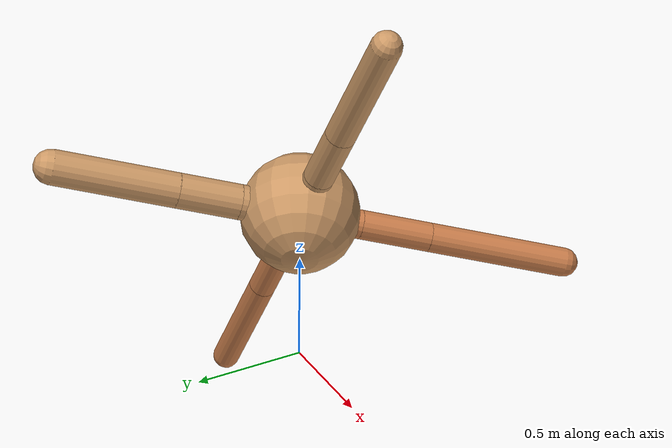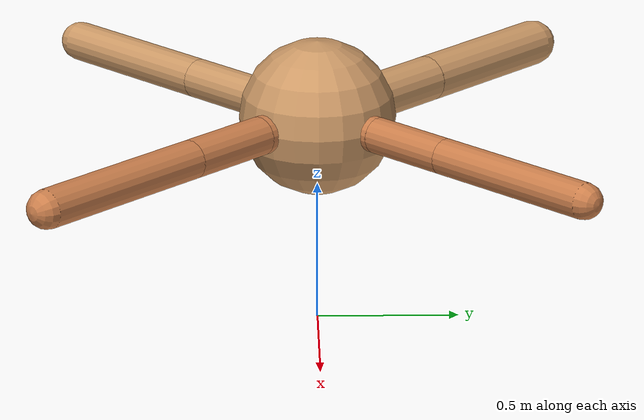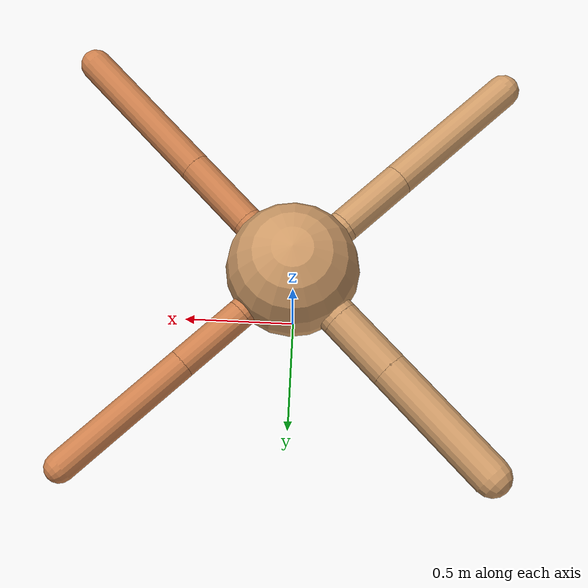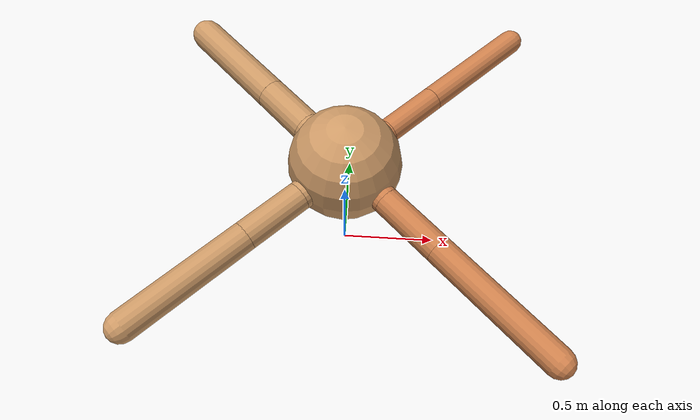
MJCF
<?xml version="1.0" ?>
<mujoco model="ant">

	<compiler angle="degree" coordinate="local" inertiafromgeom="true"/>

	<option integrator="RK4" timestep="0.01"/>

	<custom>

		<numeric data="0.0 0.0 0.55 1.0 0.0 0.0 0.0 0.0 1.0 0.0 -1.0 0.0 -1.0 0.0 1.0" name="init_qpos"/>

	</custom>

	<default>

		<joint armature="1" damping="1" limited="true"/>

		<geom conaffinity="0" condim="3" density="5.0" friction="1.5 0.1 0.1" margin="0.01" rgba="0.8 0.6 0.4 1"/>

	</default>

	<worldbody>

		<body name="torso" pos="0 0 0.75">

			<geom name="torso_geom" pos="0 0 0" size="0.2730849907276807" type="sphere"/>

			<!--joint armature="0" damping="0" limited="false" margin="0.01" name="root" pos="0 0 0" type="free"/-->

			<body name="front_left_leg" pos="0 0 0">

				<geom fromto="0 0 0 0.2 0.2 0" name="aux_1_geom" size="0.06217585319647485" type="capsule" rgba=".8 .5 .3 1"/>

				<body name="aux_1" pos="0.2 0.2 0">

					<joint axis="0 0 1" name="hip_1" pos="0.0 0.0 0.0" range="-40 40" type="hinge"/>

					<geom fromto="0 0 0 0.21759737374417024 0.21759737374417024 0" name="left_leg_geom" size="0.06217585319647485" type="capsule" rgba=".8 .5 .3 1"/>

					<body pos="0.21759737374417024 0.21759737374417024 0" name="front_left_foot">

						<joint axis="-1 1 0" name="ankle_1" pos="0.0 0.0 0.0" range="30 100" type="hinge"/>

						<geom fromto="0 0 0 0.43519474748834047 0.43519474748834047 0" name="left_ankle_geom" size="0.06217585319647485" type="capsule" rgba=".8 .5 .3 1"/>

					</body>

				</body>

			</body>

			<body name="front_right_leg" pos="0 0 0">

				<geom fromto="0 0 0 -0.2 0.2 0" name="aux_2_geom" size="0.080855898886613" type="capsule"/>

				<body name="aux_2" pos="-0.2 0.2 0">

					<joint axis="0 0 1" name="hip_2" pos="0.0 0.0 0.0" range="-40 40" type="hinge"/>

					<geom fromto="0 0 0 -0.20214799391968785 0.20214799391968785 0" name="right_leg_geom" size="0.080855898886613" type="capsule"/>

					<body pos="-0.20214799391968785 0.20214799391968785 0" name="front_right_foot">

						<joint axis="1 1 0" name="ankle_2" pos="0.0 0.0 0.0" range="-100 -30" type="hinge"/>

						<geom fromto="0 0 0 -0.4042959878393757 0.4042959878393757 0" name="right_ankle_geom" size="0.080855898886613" type="capsule"/>

					</body>

				</body>

			</body>

			<body name="left_back_leg" pos="0 0 0">

				<geom fromto="0 0 0 -0.2 -0.2 0" name="aux_3_geom" size="0.06991398648209904" type="capsule"/>

				<body name="aux_3" pos="-0.2 -0.2 0">

					<joint axis="0 0 1" name="hip_3" pos="0.0 0.0 0.0" range="-40 40" type="hinge"/>

					<geom fromto="0 0 0 -0.2187746148767424 -0.2187746148767424 0" name="back_leg_geom" size="0.06991398648209904" type="capsule"/>

					<body pos="-0.2187746148767424 -0.2187746148767424 0" name="left_back_foot">

						<joint axis="-1 1 0" name="ankle_3" pos="0.0 0.0 0.0" range="-100 -30" type="hinge"/>

						<geom fromto="0 0 0 -0.4375492297534848 -0.4375492297534848 0" name="third_ankle_geom" size="0.06991398648209904" type="capsule"/>

					</body>

				</body>

			</body>

			<body name="right_back_leg" pos="0 0 0">

				<geom fromto="0 0 0 0.2 -0.2 0" name="aux_4_geom" size="0.06709718074377129" type="capsule" rgba=".8 .5 .3 1"/>

				<body name="aux_4" pos="0.2 -0.2 0">

					<joint axis="0 0 1" name="hip_4" pos="0.0 0.0 0.0" range="-40 40" type="hinge"/>

					<geom fromto="0 0 0 0.23138967912051023 -0.23138967912051023 0" name="rightback_leg_geom" size="0.06709718074377129" type="capsule" rgba=".8 .5 .3 1"/>

					<body pos="0.23138967912051023 -0.23138967912051023 0" name="right_back_foot">

						<joint axis="1 1 0" name="ankle_4" pos="0.0 0.0 0.0" range="30 100" type="hinge"/>

						<geom fromto="0 0 0 0.46277935824102046 -0.46277935824102046 0" name="fourth_ankle_geom" size="0.06709718074377129" type="capsule" rgba=".8 .5 .3 1"/>

					</body>

				</body>

			</body>

		</body>

	</worldbody>

	<actuator>

		<motor ctrllimited="true" ctrlrange="-1.0 1.0" joint="hip_4" gear="150"/>

		<motor ctrllimited="true" ctrlrange="-1.0 1.0" joint="ankle_4" gear="150"/>

		<motor ctrllimited="true" ctrlrange="-1.0 1.0" joint="hip_1" gear="150"/>

		<motor ctrllimited="true" ctrlrange="-1.0 1.0" joint="ankle_1" gear="150"/>

		<motor ctrllimited="true" ctrlrange="-1.0 1.0" joint="hip_2" gear="150"/>

		<motor ctrllimited="true" ctrlrange="-1.0 1.0" joint="ankle_2" gear="150"/>

		<motor ctrllimited="true" ctrlrange="-1.0 1.0" joint="hip_3" gear="150"/>

		<motor ctrllimited="true" ctrlrange="-1.0 1.0" joint="ankle_3" gear="150"/>

	</actuator>

</mujoco>
